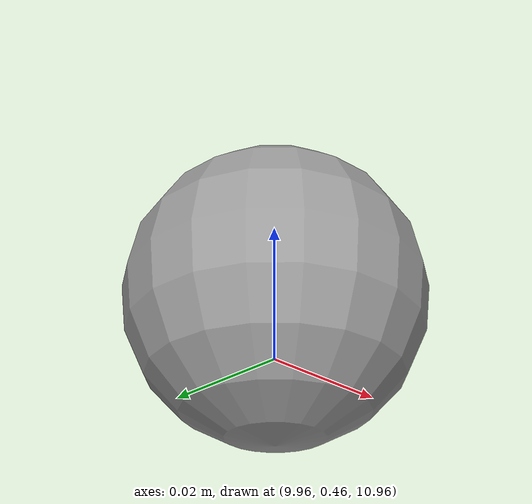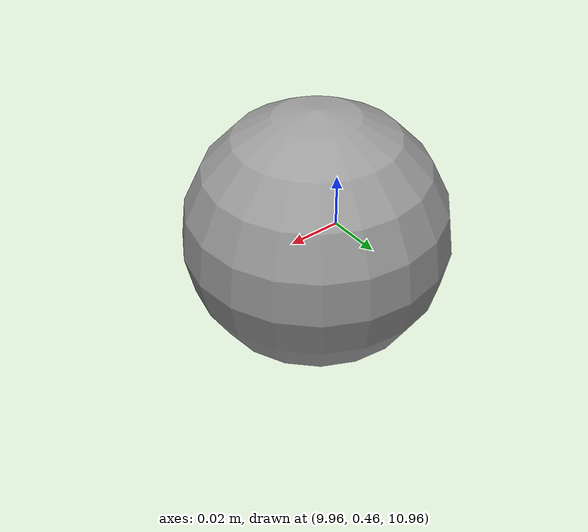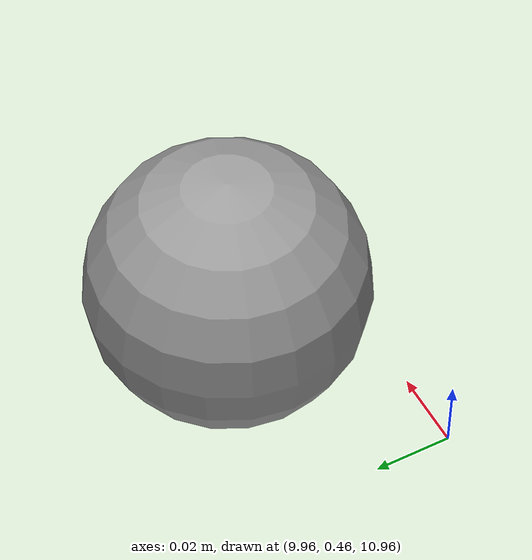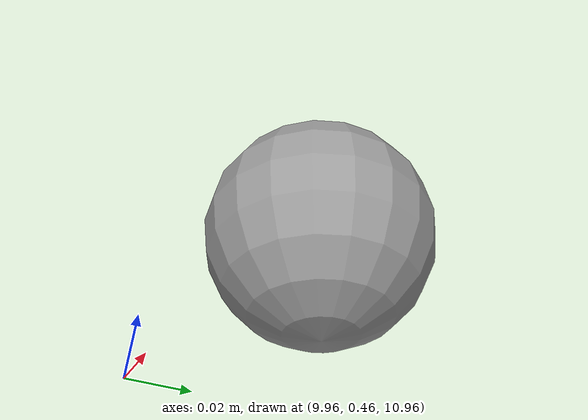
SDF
<?xml version="1.0" ?>

<sdf version="1.5">
  <model name="cricketball1">
      <pose>10 0.5 11 0 0 0</pose>
      <link name="link">
      <collision name="collision">
        <geometry>
          <sphere>
            <radius>0.035</radius>
          </sphere>
        </geometry>
        <surface>
          <bounce>
            <restitution_coefficient>0.5</restitution_coefficient>
            <threshold>0.1</threshold>
          </bounce>
          <contact>
            <ode>
              <max_vel>100</max_vel>
            </ode>
          </contact>
        </surface>
      </collision>
      <visual name="visual">
        <geometry>
          <sphere>
            <radius>0.035</radius>
          </sphere>
        </geometry>
        <material>
          <script>
            <uri>file://media/materials/scripts/gazebo.material</uri>
            <name>Gazebo/Grey</name>
          </script>
        </material>
      </visual>
      </link>
      </model>
</sdf>
